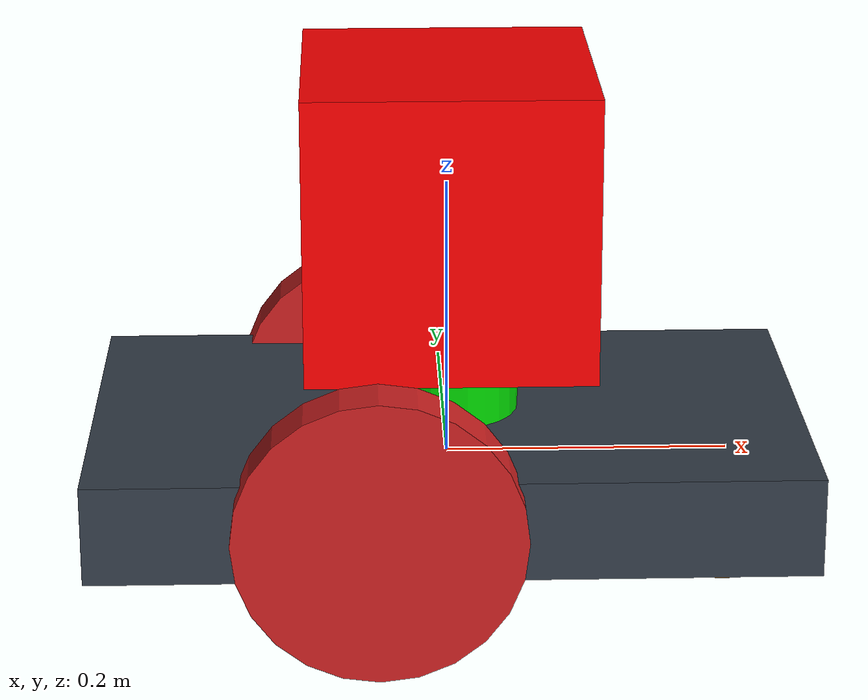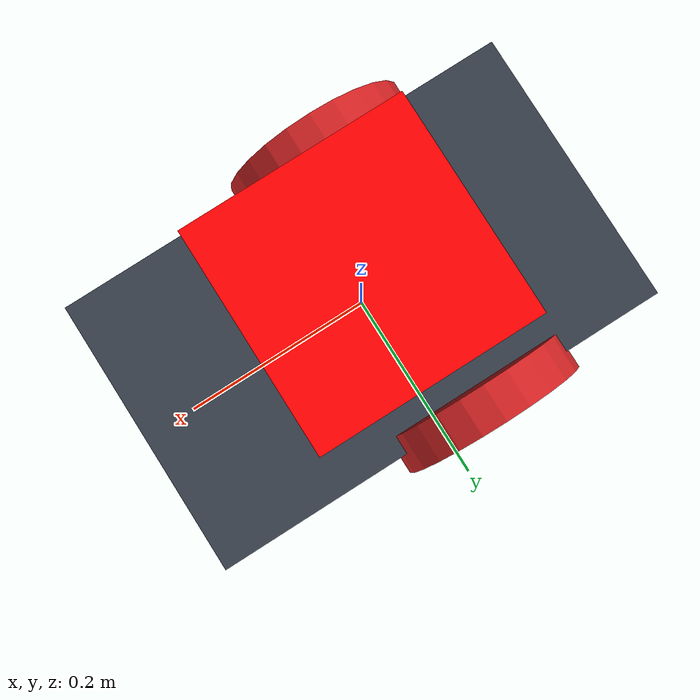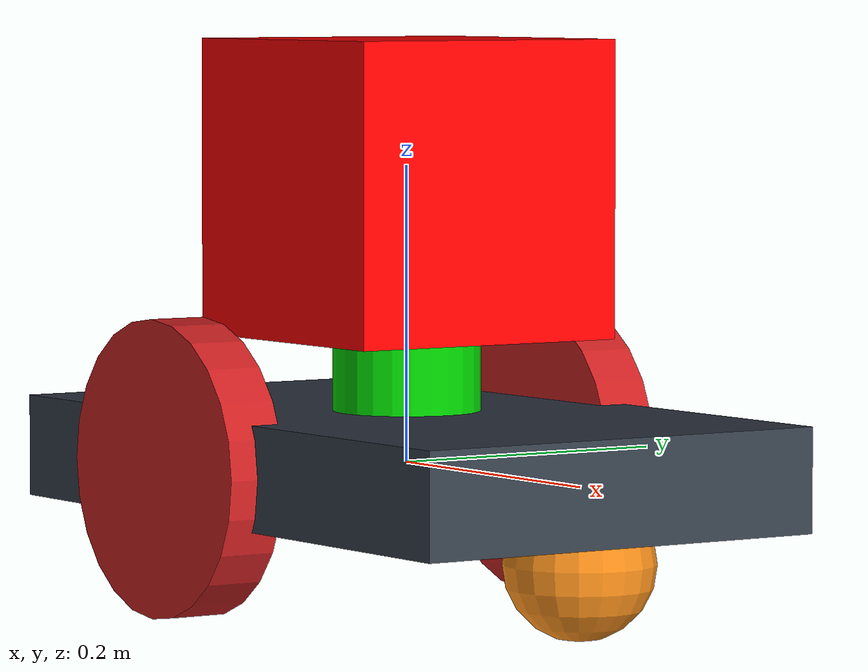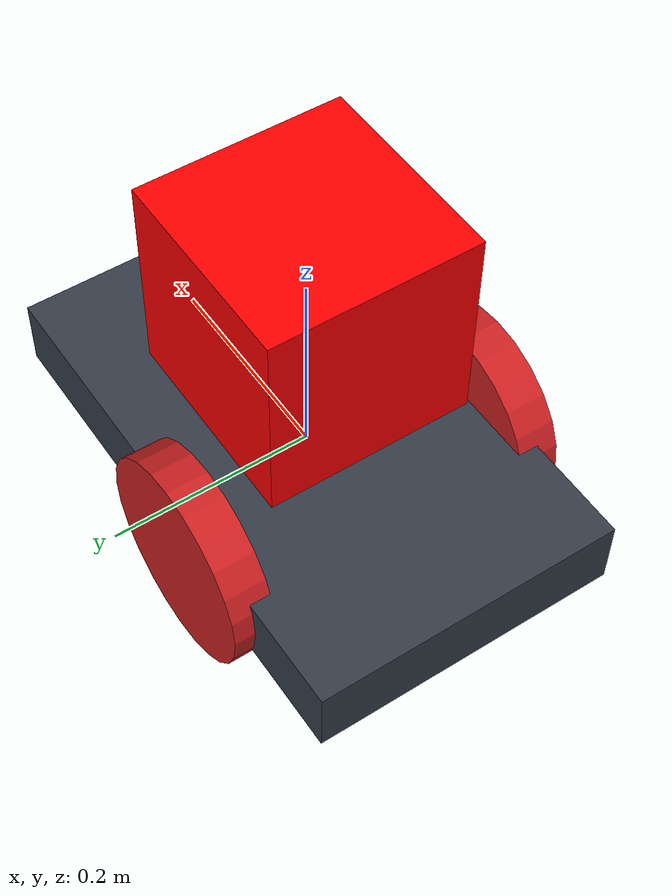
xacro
<?xml version="1.0"?>
<robot xmlns:xacro="http://www.ros.org/wiki/xacro" name="robot_xacro">
    <xacro:include filename="$(find robot_simulation)/urdf/robot.gazebo"/>

    <xacro:property name="length_wheel" value="0.04" />
    <xacro:property name="radius_wheel" value="0.1" />

    <xacro:macro name="default_inertial" params="mass">
        <inertial>
            <mass value="${mass}" />
            <origin rpy="0 1.5707 1.5707" xyz="0 0 0"/>
            <inertia ixx="0.000526666666667" ixy="0" ixz="0" iyy="0.000526666666667" iyz="0" izz="0.001"/>
        </inertial>
    </xacro:macro>

    <xacro:macro name="wheel_geometry">
        <geometry>
            <cylinder length="${length_wheel}" radius="${radius_wheel}"/>
        </geometry>
    </xacro:macro>

    <material name="black">
        <color rgba="0.0 0.0 0.0 1.0"/>
    </material>

    <material name="blue">
        <color rgba="0.203125 0.23828125 0.28515625 1.0"/>
    </material>

    <material name="green">
        <color rgba="0.0 0.8 0.0 1.0"/>
    </material>

    <material name="grey">
        <color rgba="0.2 0.2 0.2 1.0"/>
    </material>

    <material name="orange">
        <color rgba="1.0 0.423529411765 0.0392156862745 1.0"/>
    </material>

    <material name="brown">
        <color rgba="0.870588235294 0.811764705882 0.764705882353 1.0"/>
    </material>

    <material name="red">
        <color rgba="0.80078125 0.12890625 0.1328125 1.0"/>
    </material>

    <material name="white">
        <color rgba="1.0 1.0 1.0 1.0"/>
    </material>

    <!--    The moving platform -->
    <link name="link_chassis">
        <!-- pose and inertial -->
        <pose>0 0 0.1 0 0 0</pose>
        <inertial>
            <mass value="5"/>
            <origin rpy="0 0 0" xyz="0 0 0.1"/>
            <inertia ixx="0.0395416666667" ixy="0" ixz="0" iyy="0.106208333333" iyz="0" izz="0.106208333333"/>
        </inertial>
        <!-- body -->
        <collision name="collision_chassis">
            <geometry>
                <box size="0.5 0.3 0.07"/>
            </geometry>
        </collision>
        <visual>
            <origin rpy="0 0 0" xyz="0 0 0"/>
            <geometry>
                <box size="0.5 0.3 0.07"/>
            </geometry>
            <material name="blue"/>
        </visual>
        <!-- caster front -->
        <collision name="caster_front_collision">
            <origin rpy=" 0 0 0" xyz="0.35 0 -0.05"/>
            <geometry>
                <sphere radius="0.05"/>
            </geometry>
        </collision>
        <visual name="caster_front_visual">
            <origin rpy=" 0 0 0" xyz="0.2 0 -0.05"/>
            <geometry>
                <sphere radius="0.05"/>
            </geometry>
        </visual>
    </link>

    <!--    The right Wheel -->
    <link name="link_right_wheel">
        <xacro:default_inertial mass="0.2"/>
        <collision name="link_right_wheel_collision">
            <origin rpy="0 1.5707 1.5707" xyz="0 0 0"/>
            <xacro:wheel_geometry />
        </collision>
        <visual name="link_right_wheel_visual">
            <origin rpy="0 1.5707 1.5707" xyz="0 0 0"/>
            <xacro:wheel_geometry />
            <material name="red"/>
        </visual>
    </link>

    <!--    The left wheel  -->
    <link name="link_left_wheel">
        <xacro:default_inertial mass="0.2"/>
        <collision name="link_left_wheel_collision">
            <origin rpy="0 1.5707 1.5707" xyz="0 0 0"/>
            <xacro:wheel_geometry />
        </collision>
        <visual name="link_left_wheel_visual">
            <origin rpy="0 1.5707 1.5707" xyz="0 0 0"/>
            <xacro:wheel_geometry />
            <material name="red"/>
        </visual>
    </link>

    <!--    The neck    -->
    <link name="link_neck">
        <inertial>
            <mass value="0.1"/>
            <origin xyz="0 0 0" rpy="0 0 0" />
            <inertia ixx="0.0000416666667" ixy="0" ixz="0" iyy="0.0000416666667" iyz="0" izz="0.0000416666667"/>
        </inertial>
        <collision name="link_rotating_base_collision">
            <origin rpy="0 0 0" xyz="0 0 0.05" />
            <geometry>
                <cylinder length="0.10" radius="0.05"/>
            </geometry>
        </collision>
        <visual name="link_rotating_base_visual" >
            <origin rpy="0 0 0" xyz="0 0 0.05" />
            <geometry>
                <cylinder length="0.10" radius="0.05"/>
            </geometry>
            <material name="green"/>
        </visual>
    </link>

    <!--    The Camera  -->
    <link name="camera_link">
        <collision>
            <origin xyz="0 0 0.125" rpy="0 0 0"/>
            <geometry>
                <box size="0.2 0.2 0.2"/>
            </geometry>
        </collision>
        <visual>
            <origin xyz="0 0 0.1" rpy="0 0 0"/>
            <geometry>
                <box size="0.2 0.2 0.2"/>
            </geometry>
            <material name="brown">
                <color rgba="1 0 0 1"/>
            </material>
        </visual>
        <inertial>
            <mass value="1e-5" />
            <origin xyz="0 0 0" rpy="0 0 0"/>
            <inertia ixx="1e-6" ixy="0" ixz="0" iyy="1e-6" iyz="0" izz="1e-6" />
        </inertial>
    </link>

    <joint name="joint_right_wheel" type="continuous">
        <origin rpy="0 0 0" xyz="-0.05 0.15 0"/>
        <child link="link_right_wheel"/>
        <parent link="link_chassis"/>
        <axis rpy="0 0 0" xyz="0 1 0"/>
        <limit effort="10000" velocity="1000"/>
        <joint_properties damping="1.0" friction="1.0"/>
    </joint>

    <joint name="joint_left_wheel" type="continuous">
        <origin rpy="0 0 0" xyz="-0.05 -0.15 0"/>
        <child link="link_left_wheel"/>
        <parent link="link_chassis"/>
        <axis rpy="0 0 0" xyz="0 1 0"/>
        <limit effort="10000" velocity="1000"/>
        <joint_properties damping="1.0" friction="1.0"/>
    </joint>

    <!--    Joint form moving platform to the rotating base  -->
    <joint name="joint_neck" type="continuous">
        <origin rpy="0 0 0" xyz="0 0 0.035"/>
        <child link="link_neck"/>
        <parent link="link_chassis"/>
        <axis rpy="0 0 0" xyz="0 0 1"/>
        <limit effort="10000" velocity="1000"/>
        <joint_properties damping="1.0" friction="1.0"/>
    </joint>

    <!--    Joint form the neck to the camera  -->
    <joint name="camera_joint" type="fixed">
        <axis xyz="0 1 0" />
        <origin xyz="0.0 0 0.05" rpy="0 0 0"/>
        <parent link="link_neck"/>
        <child link="camera_link"/>
    </joint>

    <transmission name="neck_joint_transmission">
        <type>transmission_interface/SimpleTransmission</type>
        <joint name="joint_neck">
            <hardwareInterface>hardware_interface/EffortJointInterface</hardwareInterface>
        </joint>
        <actuator name="motor_neck">
            <hardwareInterface>hardware_interface/EffortJointInterface</hardwareInterface>
            <mechanicalInterface>1</mechanicalInterface>
        </actuator>
    </transmission>

</robot>
